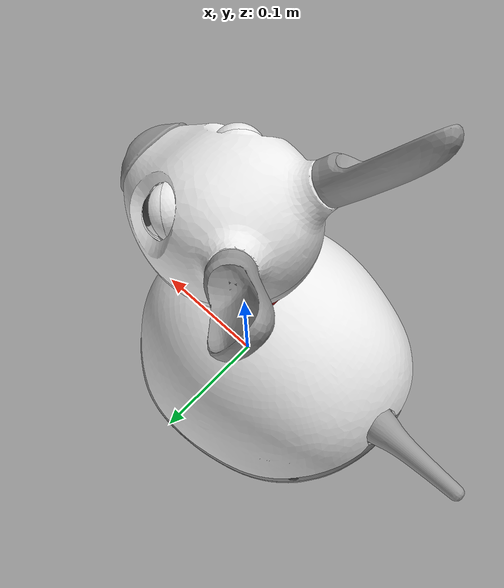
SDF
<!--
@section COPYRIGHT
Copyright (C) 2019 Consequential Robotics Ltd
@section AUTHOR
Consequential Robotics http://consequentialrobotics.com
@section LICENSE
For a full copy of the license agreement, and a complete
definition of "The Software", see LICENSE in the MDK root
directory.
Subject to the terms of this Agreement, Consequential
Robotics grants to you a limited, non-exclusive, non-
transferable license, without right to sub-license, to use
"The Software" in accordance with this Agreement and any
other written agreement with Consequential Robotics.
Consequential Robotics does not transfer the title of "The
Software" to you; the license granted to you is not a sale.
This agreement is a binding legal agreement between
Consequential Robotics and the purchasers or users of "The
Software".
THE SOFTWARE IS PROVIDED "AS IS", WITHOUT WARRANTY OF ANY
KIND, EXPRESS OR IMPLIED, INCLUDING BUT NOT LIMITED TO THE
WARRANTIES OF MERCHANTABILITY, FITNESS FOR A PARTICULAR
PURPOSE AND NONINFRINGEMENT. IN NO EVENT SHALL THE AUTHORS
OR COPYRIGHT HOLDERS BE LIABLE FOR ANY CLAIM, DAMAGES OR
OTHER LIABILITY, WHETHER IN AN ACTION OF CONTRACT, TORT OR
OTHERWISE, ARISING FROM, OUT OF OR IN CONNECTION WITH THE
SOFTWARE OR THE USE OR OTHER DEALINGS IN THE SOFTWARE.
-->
<?xml version="1.0"?>

<sdf version="1.5">
	<model name="miro">

		<include>
			<uri>model://miro_model/components/miro_body</uri>
			<pose>0 0 0 0 0 0</pose>
		</include>

		<include>
			<uri>model://miro_model/components/miro_tail</uri>
			<pose>0 0 0 0 0 0</pose>
		</include>

		<joint type="revolute" name="body_neck">
			<pose>-0.002 0 0.081 0 0 0</pose>
			<parent>miro_body::body</parent>
			<child>miro_neck::neck</child>
			<axis>
				<xyz>0 1 0</xyz>
				<limit>
					<lower>0</lower>
					<upper>1.57</upper>
				</limit>
				<dynamics>
					<spring_stiffness>0.4</spring_stiffness>
					<spring_reference>0.0</spring_reference>
					<friction>0.01</friction>
					<damping>0.1</damping>
				</dynamics>
			</axis>
		</joint>

		<include>
			<uri>model://miro_model/components/miro_neck</uri>
			<pose>0 0 0 0 0 0</pose>
		</include>

		<joint type="revolute" name="neck_gmbl">
			<pose>-0.002 0 0.201 0 0 0</pose>
			<parent>miro_neck::neck</parent>
			<child>miro_gmbl::gmbl</child>
			<axis>
				<xyz>0 0 1</xyz>
				<limit>
					<lower>-1.57</lower>
					<upper>1.57</upper>
				</limit>
				<dynamics>
					<friction>0.01</friction>
					<damping>0.1</damping>
				</dynamics>
			</axis>
		</joint>

		<include>
			<uri>model://miro_model/components/miro_gmbl</uri>
			<pose>0 0 0 0 0 0</pose>
		</include>

		<joint type="revolute" name="gmbl_head">
			<pose>-0.002 0 0.201 0 0 0</pose>
			<parent>miro_gmbl::gmbl</parent>
			<child>miro_head::head</child>
			<axis>
				<xyz>0 1 0</xyz>
				<limit>
					<lower>-1.57</lower>
					<upper>1.57</upper>
				</limit>
				<dynamics>
					<spring_stiffness>0.1</spring_stiffness>
					<spring_reference>-0.5</spring_reference>
					<friction>0.01</friction>
					<damping>0.1</damping>
				</dynamics>
			</axis>
		</joint>

		<include>
			<uri>model://miro_model/components/miro_head</uri>
			<pose>0 0 0 0 0 0</pose>
		</include>

		<plugin name="miro_model" filename="libmiro_gazebo.so"/>

	</model>
</sdf>

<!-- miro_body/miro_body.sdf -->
<sdf version="1.5">
	<model name="miro_body">
		<link name="body">
			<inertial>
				<pose>-0.060 0 0.050 0 0 0</pose>
				<mass>1.570796</mass>
				<inertia>
					<ixx>0.00523599</ixx>
					<ixy>0.0</ixy>
					<ixz>0.0</ixz>
					<iyy>0.00523599</iyy>
					<iyz>0.0</iyz>
					<izz>0.00785398</izz>
				</inertia>
			</inertial>
			<visual name="visual_valance">
				<pose>0 0 0 0 0 0</pose>
				<geometry>
					<mesh>
						<uri>model://miro_model/meshes/valance.stl</uri>
					</mesh>
				</geometry>
				<material>
					<script>
						<uri>file://media/materials/scripts/gazebo.material</uri>
						<name>Gazebo/Grey</name>
					</script>
				</material>
			</visual>
			<collision name="collision_valance">
				<pose>0 0 0 0 0 0</pose>
				<geometry>
					<mesh>
						<uri>model://miro_model/meshes/valance_collision.stl</uri>
					</mesh>
				</geometry>
				<surface>
					<friction>
						<ode>
							<mu>0.1</mu>
							<mu2>0.1</mu2>
						</ode>
					</friction>
				</surface>
			</collision>
			<visual name="visual_skirt_lh">
				<pose>0 0 0 0 0 0</pose>
				<geometry>
					<mesh>
						<uri>model://miro_model/meshes/skirt_lh.stl</uri>
					</mesh>
				</geometry>
				<material>
					<script>
						<uri>file://media/materials/scripts/gazebo.material</uri>
						<name>Gazebo/Grey</name>
					</script>
				</material>
			</visual>
			<visual name="visual_skirt_rh">
				<pose>0 0 0 0 0 0</pose>
				<geometry>
					<mesh>
						<uri>model://miro_model/meshes/skirt_rh.stl</uri>
					</mesh>
				</geometry>
				<material>
					<script>
						<uri>file://media/materials/scripts/gazebo.material</uri>
						<name>Gazebo/Grey</name>
					</script>
				</material>
			</visual>
			<visual name="visual_cliff_sensor_L_asm">
				<pose>0 0 0 0 0 0</pose>
				<geometry>
					<mesh>
						<uri>model://miro_model/meshes/cliff_sensor_L_asm.stl</uri>
					</mesh>
				</geometry>
				<material>
					<script>
						<uri>file://media/materials/scripts/gazebo.material</uri>
						<name>Gazebo/DarkGrey</name>
					</script>
				</material>
			</visual>
			<visual name="visual_cliff_sensor_R_asm">
				<pose>0 0 0 0 0 0</pose>
				<geometry>
					<mesh>
						<uri>model://miro_model/meshes/cliff_sensor_R_asm.stl</uri>
					</mesh>
				</geometry>
				<material>
					<script>
						<uri>file://media/materials/scripts/gazebo.material</uri>
						<name>Gazebo/DarkGrey</name>
					</script>
				</material>
			</visual>
			<visual name="visual_light_sensor_holder_asm_L">
				<pose>0 0 0 0 0 0</pose>
				<geometry>
					<mesh>
						<uri>model://miro_model/meshes/light_sensor_holder_asm_L.stl</uri>
					</mesh>
				</geometry>
				<material>
					<script>
						<uri>file://media/materials/scripts/gazebo.material</uri>
						<name>Gazebo/DarkGrey</name>
					</script>
				</material>
			</visual>
			<visual name="visual_light_sensor_holder_asm_R">
				<pose>0 0 0 0 0 0</pose>
				<geometry>
					<mesh>
						<uri>model://miro_model/meshes/light_sensor_holder_asm_R.stl</uri>
					</mesh>
				</geometry>
				<material>
					<script>
						<uri>file://media/materials/scripts/gazebo.material</uri>
						<name>Gazebo/DarkGrey</name>
					</script>
				</material>
			</visual>
			<visual name="visual_body_shell">
				<pose>0 0 0 0 0 0</pose>
				<geometry>
					<mesh>
						<uri>model://miro_model/meshes/body_shell.stl</uri>
					</mesh>
				</geometry>
				<material>
					<script>
						<uri>file://media/materials/scripts/gazebo.material</uri>
						<name>Gazebo/White</name>
					</script>
				</material>
			</visual>
			<collision name="collision_body_shell">
				<pose>0 0 0 0 0 0</pose>
				<geometry>
					<mesh>
						<uri>model://miro_model/meshes/body_shell_collision.stl</uri>
					</mesh>
				</geometry>
				<surface>
					<friction>
						<ode>
							<mu>0.1</mu>
							<mu2>0.1</mu2>
						</ode>
					</friction>
				</surface>
			</collision>
			<visual name="visual_slider">
				<pose>0 0 0 0 0 0</pose>
				<geometry>
					<mesh>
						<uri>model://miro_model/meshes/slider.stl</uri>
					</mesh>
				</geometry>
				<material>
					<script>
						<uri>file://media/materials/scripts/gazebo.material</uri>
						<name>Gazebo/DarkGrey</name>
					</script>
				</material>
			</visual>
			<collision name="collision_slider">
				<pose>0 0 0 0 0 0</pose>
				<geometry>
					<mesh>
						<uri>model://miro_model/meshes/slider_collision.stl</uri>
					</mesh>
				</geometry>
				<surface>
					<friction>
						<ode>
							<mu>0.01</mu>
							<mu2>0.01</mu2>
						</ode>
					</friction>
				</surface>
			</collision>
			<visual name="visual_battery_box">
				<pose>0 0 0 0 0 0</pose>
				<geometry>
					<mesh>
						<uri>model://miro_model/meshes/battery_box.stl</uri>
					</mesh>
				</geometry>
				<material>
					<script>
						<uri>file://media/materials/scripts/gazebo.material</uri>
						<name>Gazebo/Grey</name>
					</script>
				</material>
			</visual>
			<visual name="visual_battery_box_cover">
				<pose>0 0 0 0 0 0</pose>
				<geometry>
					<mesh>
						<uri>model://miro_model/meshes/battery_box_cover.stl</uri>
					</mesh>
				</geometry>
				<material>
					<script>
						<uri>file://media/materials/scripts/gazebo.material</uri>
						<name>Gazebo/Grey</name>
					</script>
				</material>
			</visual>
			<!-- imu -->
			<sensor name="acc_body" type="imu">
				<pose>0 0 0 0 0 0</pose>
				<always_on>1</always_on>
				<update_rate>50</update_rate>
				<visualize>false</visualize>
			</sensor>
			<!-- cliff -->
			<sensor name="cliff_l" type="sonar">
				<pose>0.062 0.055 0.085 0 -0.52 0</pose>
				<always_on>1</always_on>
				<update_rate>50</update_rate>
				<visualize>false</visualize>
				<sonar>
					<min>0.0</min>
					<max>0.5</max>
					<radius>0.025</radius>
				</sonar>
			</sensor>
			<!-- cliff -->
			<sensor name="cliff_r" type="sonar">
				<pose>0.062 -0.055 0.085 0 -0.52 0</pose>
				<always_on>1</always_on>
				<update_rate>50</update_rate>
				<visualize>false</visualize>
				<sonar>
					<min>0.0</min>
					<max>0.5</max>
					<radius>0.025</radius>
				</sonar>
			</sensor>
			<!-- light -->
			<sensor name="lightfl" type="camera">
				<pose>0.055 0.065 0.08 0 -0.26 0.52</pose>
				<camera>
					<horizontal_fov>1.57</horizontal_fov>
					<image>
						<width>16</width>
						<height>12</height>
					</image>
					<clip>
						<near>0.01</near>
						<far>2</far>
					</clip>
				</camera>
				<always_on>1</always_on>
				<update_rate>5</update_rate>
				<visualize>false</visualize>
			</sensor>
			<!-- light -->
			<sensor name="lightfr" type="camera">
				<pose>0.055 -0.065 0.08 0 -0.26 -0.52</pose>
				<camera>
					<horizontal_fov>1.57</horizontal_fov>
					<image>
						<width>16</width>
						<height>12</height>
					</image>
					<clip>
						<near>0.01</near>
						<far>2</far>
					</clip>
				</camera>
				<always_on>1</always_on>
				<update_rate>5</update_rate>
				<visualize>false</visualize>
			</sensor>
			<!-- light -->
			<sensor name="lightrl" type="camera">
				<pose>-0.125 0.072 0.06 0 -0.26 2.61</pose>
				<camera>
					<horizontal_fov>1.57</horizontal_fov>
					<image>
						<width>16</width>
						<height>12</height>
					</image>
					<clip>
						<near>0.01</near>
						<far>5</far>
					</clip>
				</camera>
				<always_on>1</always_on>
				<update_rate>5</update_rate>
				<visualize>false</visualize>
			</sensor>
			<!-- light -->
			<sensor name="lightrr" type="camera">
				<pose>-0.125 -0.072 0.06 0 -0.26 -2.61</pose>
				<camera>
					<horizontal_fov>1.57</horizontal_fov>
					<image>
						<width>16</width>
						<height>12</height>
					</image>
					<clip>
						<near>0.01</near>
						<far>5</far>
					</clip>
				</camera>
				<always_on>1</always_on>
				<update_rate>5</update_rate>
				<visualize>false</visualize>
			</sensor>
		</link>
		<link name="wheel_lh">
			<inertial>
				<pose>0.000630 0.077790 0.044838 0 0 0</pose>
				<mass>0.134041</mass>
				<inertia>
					<ixx>0.00014298</ixx>
					<ixy>0.0</ixy>
					<ixz>0.0</ixz>
					<iyy>0.00014298</iyy>
					<iyz>0.0</iyz>
					<izz>0.00014298</izz>
				</inertia>
			</inertial>
			<visual name="visual_wheel_tyre_lh">
				<pose>0 0 0 0 0 0</pose>
				<geometry>
					<mesh>
						<uri>model://miro_model/meshes/wheel_tyre_lh.stl</uri>
					</mesh>
				</geometry>
				<material>
					<script>
						<uri>file://media/materials/scripts/gazebo.material</uri>
						<name>Gazebo/DarkGrey</name>
					</script>
				</material>
			</visual>
			<collision name="collision_wheel_tyre_lh">
				<pose>0 0 0 0 0 0</pose>
				<geometry>
					<mesh>
						<uri>model://miro_model/meshes/wheel_tyre_lh_collision.stl</uri>
					</mesh>
				</geometry>
				<surface>
					<friction>
						<ode>
							<mu>1</mu>
							<mu2>1</mu2>
						</ode>
					</friction>
				</surface>
			</collision>
			<visual name="visual_wheel_rim_lh">
				<pose>0 0 0 0 0 0</pose>
				<geometry>
					<mesh>
						<uri>model://miro_model/meshes/wheel_rim_lh.stl</uri>
					</mesh>
				</geometry>
				<material>
					<script>
						<uri>file://media/materials/scripts/gazebo.material</uri>
						<name>Gazebo/Grey</name>
					</script>
				</material>
			</visual>
		</link>
		<link name="wheel_rh">
			<inertial>
				<pose>0.000630 -0.077790 0.044838 0 0 0</pose>
				<mass>0.134041</mass>
				<inertia>
					<ixx>0.00014298</ixx>
					<ixy>0.0</ixy>
					<ixz>0.0</ixz>
					<iyy>0.00014298</iyy>
					<iyz>0.0</iyz>
					<izz>0.00014298</izz>
				</inertia>
			</inertial>
			<visual name="visual_wheel_tyre_rh">
				<pose>0 0 0 0 0 0</pose>
				<geometry>
					<mesh>
						<uri>model://miro_model/meshes/wheel_tyre_rh.stl</uri>
					</mesh>
				</geometry>
				<material>
					<script>
						<uri>file://media/materials/scripts/gazebo.material</uri>
						<name>Gazebo/DarkGrey</name>
					</script>
				</material>
			</visual>
			<collision name="collision_wheel_tyre_rh">
				<pose>0 0 0 0 0 0</pose>
				<geometry>
					<mesh>
						<uri>model://miro_model/meshes/wheel_tyre_rh_collision.stl</uri>
					</mesh>
				</geometry>
				<surface>
					<friction>
						<ode>
							<mu>1</mu>
							<mu2>1</mu2>
						</ode>
					</friction>
				</surface>
			</collision>
			<visual name="visual_wheel_rim_rh">
				<pose>0 0 0 0 0 0</pose>
				<geometry>
					<mesh>
						<uri>model://miro_model/meshes/wheel_rim_rh.stl</uri>
					</mesh>
				</geometry>
				<material>
					<script>
						<uri>file://media/materials/scripts/gazebo.material</uri>
						<name>Gazebo/Grey</name>
					</script>
				</material>
			</visual>
		</link>
		<joint type="revolute" name="body_wheel_lh">
			<pose>0.000630 0.077790 0.044838 0 0 0</pose>
			<parent>body</parent>
			<child>wheel_lh</child>
			<axis>
				<xyz>0 0.999657 0.026185</xyz>
				<dynamics>
					<friction>0.1</friction>
					<damping>0.1</damping>
				</dynamics>
			</axis>
		</joint>
		<joint type="revolute" name="body_wheel_rh">
			<pose>0.000630 -0.077790 0.044838 0 0 0</pose>
			<parent>body</parent>
			<child>wheel_rh</child>
			<axis>
				<xyz>0 0.999657 -0.026185</xyz>
				<dynamics>
					<friction>0.1</friction>
					<damping>0.1</damping>
				</dynamics>
			</axis>
		</joint>
	</model>
</sdf>

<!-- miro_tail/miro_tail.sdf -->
<sdf version="1.5">
	<model name="miro_tail">
		<link name="tail_gmbl">
			<inertial>
				<pose>-0.143 0 0.085 0 0 0</pose>
				<mass>0.056549</mass>
				<inertia>
					<ixx>0.00003393</ixx>
					<ixy>0.0</ixy>
					<ixz>0.0</ixz>
					<iyy>0.00003393</iyy>
					<iyz>0.0</iyz>
					<izz>0.00003393</izz>
				</inertia>
			</inertial>
		</link>
		<joint type="revolute" name="body_tail_gmbl">
			<pose>-0.143 0 0.085 0 0 0</pose>
			<parent>miro_body::body</parent>
			<child>miro_tail::tail_gmbl</child>
			<axis>
				<xyz>0 1 0</xyz>
				<limit>
					<lower>-1.57</lower>
					<upper>1.57</upper>
				</limit>
				<dynamics>
					<friction>0.01</friction>
					<damping>0.02</damping>
				</dynamics>
			</axis>
		</joint>
		<link name="tail">
			<inertial>
				<pose>-0.143 0 0.085 0 0 0</pose>
				<mass>0.056549</mass>
				<inertia>
					<ixx>0.00003393</ixx>
					<ixy>0.0</ixy>
					<ixz>0.0</ixz>
					<iyy>0.00003393</iyy>
					<iyz>0.0</iyz>
					<izz>0.00003393</izz>
				</inertia>
			</inertial>
			<visual name="visual_tail">
				<pose>0 0 0 0 0 0</pose>
				<geometry>
					<mesh>
						<uri>model://miro_model/meshes/tail.stl</uri>
					</mesh>
				</geometry>
				<material>
					<script>
						<uri>file://media/materials/scripts/gazebo.material</uri>
						<name>Gazebo/Grey</name>
					</script>
				</material>
			</visual>
			<collision name="collision_tail">
				<pose>0 0 0 0 0 0</pose>
				<geometry>
					<mesh>
						<uri>model://miro_model/meshes/tail_collision.stl</uri>
					</mesh>
				</geometry>
				<surface>
					<friction>
						<ode>
							<mu>0.1</mu>
							<mu2>0.1</mu2>
						</ode>
					</friction>
				</surface>
			</collision>
		</link>
		<joint type="revolute" name="tail_gmbl_tail">
			<pose>-0.143 0 0.085 0 0 0</pose>
			<parent>miro_tail::tail_gmbl</parent>
			<child>miro_tail::tail</child>
			<axis>
				<xyz>0 0 1</xyz>
				<limit>
					<lower>-1.57</lower>
					<upper>1.57</upper>
				</limit>
				<dynamics>
					<friction>0.01</friction>
					<damping>0.02</damping>
				</dynamics>
			</axis>
		</joint>
	</model>
</sdf>

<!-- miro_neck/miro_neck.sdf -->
<sdf version="1.5">
	<model name="miro_neck">
		<link name="neck">
			<inertial>
				<pose>-0.002 0 0.141 0 0 0</pose>
				<mass>0.075398</mass>
				<inertia>
					<ixx>0.00009802</ixx>
					<ixy>0.0</ixy>
					<ixz>0.0</ixz>
					<iyy>0.00009802</iyy>
					<iyz>0.0</iyz>
					<izz>0.00001508</izz>
				</inertia>
			</inertial>
		</link>
	</model>
</sdf>

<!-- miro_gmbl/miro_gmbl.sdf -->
<sdf version="1.5">
	<model name="miro_gmbl">
		<link name="gmbl">
			<inertial>
				<pose>-0.002 0 0.171 0 0 0</pose>
				<mass>0.039270</mass>
				<inertia>
					<ixx>0.00002487</ixx>
					<ixy>0.0</ixy>
					<ixz>0.0</ixz>
					<iyy>0.00002487</iyy>
					<iyz>0.0</iyz>
					<izz>0.00004909</izz>
				</inertia>
			</inertial>
			<visual name="visual_collar">
				<pose>0 0 0 0 0 0</pose>
				<geometry>
					<mesh>
						<uri>model://miro_model/meshes/collar.stl</uri>
					</mesh>
				</geometry>
				<material>
					<script>
						<uri>file://media/materials/scripts/gazebo.material</uri>
						<name>Gazebo/Red</name>
					</script>
				</material>
			</visual>
		</link>
	</model>
</sdf>

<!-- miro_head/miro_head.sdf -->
<sdf version="1.5">
	<model name="miro_head">
		<link name="head">
			<inertial>
				<pose>-0.002 0 0.221 0 0 0</pose>
				<mass>0.261799</mass>
				<inertia>
					<ixx>0.00043633</ixx>
					<ixy>0.0</ixy>
					<ixz>0.0</ixz>
					<iyy>0.00043633</iyy>
					<iyz>0.0</iyz>
					<izz>0.00043633</izz>
				</inertia>
			</inertial>
			<visual name="visual_head_lower">
				<pose>0 0 0 0 0 0</pose>
				<geometry>
					<mesh>
						<uri>model://miro_model/meshes/head_lower.stl</uri>
					</mesh>
				</geometry>
				<material>
					<script>
						<uri>file://media/materials/scripts/gazebo.material</uri>
						<name>Gazebo/White</name>
					</script>
				</material>
			</visual>
			<collision name="collision_head_lower">
				<pose>0 0 0 0 0 0</pose>
				<geometry>
					<mesh>
						<uri>model://miro_model/meshes/head_lower_collision.stl</uri>
					</mesh>
				</geometry>
				<surface>
					<friction>
						<ode>
							<mu>0.1</mu>
							<mu2>0.1</mu2>
						</ode>
					</friction>
				</surface>
			</collision>
			<visual name="visual_head_upper">
				<pose>0 0 0 0 0 0</pose>
				<geometry>
					<mesh>
						<uri>model://miro_model/meshes/head_upper.stl</uri>
					</mesh>
				</geometry>
				<material>
					<script>
						<uri>file://media/materials/scripts/gazebo.material</uri>
						<name>Gazebo/White</name>
					</script>
				</material>
			</visual>
			<collision name="collision_head_upper">
				<pose>0 0 0 0 0 0</pose>
				<geometry>
					<mesh>
						<uri>model://miro_model/meshes/head_upper_collision.stl</uri>
					</mesh>
				</geometry>
				<surface>
					<friction>
						<ode>
							<mu>0.1</mu>
							<mu2>0.1</mu2>
						</ode>
					</friction>
				</surface>
			</collision>
			<visual name="visual_eyelid_lower_lh">
				<pose>0 0 0 0 0 0</pose>
				<geometry>
					<mesh>
						<uri>model://miro_model/meshes/eyelid_lower_lh.stl</uri>
					</mesh>
				</geometry>
				<material>
					<script>
						<uri>file://media/materials/scripts/gazebo.material</uri>
						<name>Gazebo/White</name>
					</script>
				</material>
			</visual>
			<visual name="visual_eyelid_lower_rh">
				<pose>0 0 0 0 0 0</pose>
				<geometry>
					<mesh>
						<uri>model://miro_model/meshes/eyelid_lower_rh.stl</uri>
					</mesh>
				</geometry>
				<material>
					<script>
						<uri>file://media/materials/scripts/gazebo.material</uri>
						<name>Gazebo/White</name>
					</script>
				</material>
			</visual>
			<visual name="visual_nose">
				<pose>0 0 0 0 0 0</pose>
				<geometry>
					<mesh>
						<uri>model://miro_model/meshes/nose.stl</uri>
					</mesh>
				</geometry>
				<material>
					<script>
						<uri>file://media/materials/scripts/gazebo.material</uri>
						<name>Gazebo/Grey</name>
					</script>
				</material>
			</visual>
			<collision name="collision_nose">
				<pose>0 0 0 0 0 0</pose>
				<geometry>
					<mesh>
						<uri>model://miro_model/meshes/nose_collision.stl</uri>
					</mesh>
				</geometry>
				<surface>
					<friction>
						<ode>
							<mu>0.3</mu>
							<mu2>0.3</mu2>
						</ode>
					</friction>
				</surface>
			</collision>
			<visual name="visual_eyeball_lh">
				<pose>0 0 0 0 0 0</pose>
				<geometry>
					<mesh>
						<uri>model://miro_model/meshes/eyeball_lh.stl</uri>
					</mesh>
				</geometry>
				<material>
					<script>
						<uri>file://media/materials/scripts/gazebo.material</uri>
						<name>Gazebo/White</name>
					</script>
				</material>
			</visual>
			<visual name="visual_eyeball_rh">
				<pose>0 0 0 0 0 0</pose>
				<geometry>
					<mesh>
						<uri>model://miro_model/meshes/eyeball_rh.stl</uri>
					</mesh>
				</geometry>
				<material>
					<script>
						<uri>file://media/materials/scripts/gazebo.material</uri>
						<name>Gazebo/White</name>
					</script>
				</material>
			</visual>
			<visual name="visual_iris_lh">
				<pose>0 0 0 0 0 0</pose>
				<geometry>
					<mesh>
						<uri>model://miro_model/meshes/iris_lh.stl</uri>
					</mesh>
				</geometry>
				<material>
					<script>
						<uri>file://media/materials/scripts/gazebo.material</uri>
						<name>Gazebo/DarkGrey</name>
					</script>
				</material>
			</visual>
			<visual name="visual_iris_rh">
				<pose>0 0 0 0 0 0</pose>
				<geometry>
					<mesh>
						<uri>model://miro_model/meshes/iris_rh.stl</uri>
					</mesh>
				</geometry>
				<material>
					<script>
						<uri>file://media/materials/scripts/gazebo.material</uri>
						<name>Gazebo/DarkGrey</name>
					</script>
				</material>
			</visual>
			<!-- eye_l -->
			<sensor name="eye_l" type="wideanglecamera">
				<!-- pose position come from miro_software_constants.h -->
				<!-- pose angles come from dev/sim_camera_calib -->
				<pose>0.0377 0.0431 0.2595 -0.4262 -0.6816 0.6244</pose>
				<camera>
					<horizontal_fov>2.0944</horizontal_fov>
					<image>
						<width>1280</width>
						<height>720</height>
					</image>
					<clip>
						<!-- clip at short range to eliminate eyelid from view -->
						<near>0.006</near>
						<far>100</far>
					</clip>
					<lens>
						<type>custom</type>
						<scale_to_hfov>1</scale_to_hfov>
						<custom_function>
							<c1>2.0</c1>
							<c2>1.25</c2>
							<c3>0.0</c3>
							<f>1.0</f>
							<fun>sin</fun>
						</custom_function>
					</lens>
				</camera>
				<always_on>1</always_on>
				<update_rate>10</update_rate>
				<visualize>false</visualize>
			</sensor>
			<!-- eye_r -->
			<sensor name="eye_r" type="wideanglecamera">
				<pose>0.0377 -0.0431 0.2595 0.4261 -0.6816 -0.6244</pose>
				<camera>
					<horizontal_fov>2.0944</horizontal_fov>
					<image>
						<width>1280</width>
						<height>720</height>
					</image>
					<clip>
						<near>0.006</near>
						<far>100</far>
					</clip>
					<lens>
						<type>custom</type>
						<scale_to_hfov>1</scale_to_hfov>
						<custom_function>
							<c1>2.0</c1>
							<c2>1.25</c2>
							<c3>0.0</c3>
							<f>1.0</f>
							<fun>sin</fun>
						</custom_function>
					</lens>
				</camera>
				<always_on>1</always_on>
				<update_rate>10</update_rate>
				<visualize>false</visualize>
			</sensor>
			<!-- eye_l narrow -->
			<sensor name="eye_l_narrow" type="camera">
				<!-- pose position come from miro_software_constants.h -->
				<!-- pose angles come from dev/sim_camera_calib -->
				<pose>0.0377 0.0431 0.2595 -0.4262 -0.6816 0.6244</pose>
				<camera>
					<horizontal_fov>2.0944</horizontal_fov>
					<image>
						<width>1280</width>
						<height>720</height>
					</image>
					<clip>
						<!-- clip at short range to eliminate eyelid from view -->
						<near>0.006</near>
						<far>100</far>
					</clip>
				</camera>
				<always_on>1</always_on>
				<update_rate>10</update_rate>
				<visualize>false</visualize>
			</sensor>
			<!-- eye_r_narrow -->
			<sensor name="eye_r_narrow" type="camera">
				<pose>0.0377 -0.0431 0.2595 0.4261 -0.6816 -0.6244</pose>
				<camera>
					<horizontal_fov>2.0944</horizontal_fov>
					<image>
						<width>1280</width>
						<height>720</height>
					</image>
					<clip>
						<near>0.006</near>
						<far>100</far>
					</clip>
				</camera>
				<always_on>1</always_on>
				<update_rate>10</update_rate>
				<visualize>false</visualize>
			</sensor>
			<!-- gaze -->
			<sensor name="gaze" type="camera">
				<pose>0.0577 0 0.2795 0 -0.785398 0</pose>
				<camera>
					<horizontal_fov>1.0</horizontal_fov>
					<image>
						<width>1280</width>
						<height>720</height>
					</image>
					<clip>
						<near>0.001</near>
						<far>100</far>
					</clip>
				</camera>
				<always_on>1</always_on>
				<update_rate>10</update_rate>
				<visualize>false</visualize>
			</sensor>
			<!-- overhead -->
			<sensor name="overhead" type="camera">
				<pose>0 0 1.0 0 1.22 0</pose>
				<camera>
					<horizontal_fov>1.0472</horizontal_fov>
					<image>
						<width>1280</width>
						<height>720</height>
					</image>
					<clip>
						<near>0.01</near>
						<far>2</far>
					</clip>
				</camera>
				<always_on>1</always_on>
				<update_rate>10</update_rate>
				<visualize>false</visualize>
			</sensor>
			<!-- imu -->
			<sensor name="acc_head" type="imu">
				<pose>0 0 0 0 0 0</pose>
				<always_on>1</always_on>
				<update_rate>50</update_rate>
				<visualize>false</visualize>
			</sensor>
			<!-- sonar -->
			<sensor name="sonar" type="sonar">
				<pose>0.1 0 0.235 0 -1.5708 0</pose>
				<always_on>1</always_on>
				<update_rate>50</update_rate>
				<visualize>false</visualize>
				<sonar>
					<min>0.0</min>
					<max>1.0</max>
					<radius>0.05</radius>
				</sonar>
			</sensor>
		</link>
		<link name="eyelid_lh">
			<inertial>
				<pose>0.029 0.032 0.252 0 0 0</pose>
				<mass>0.016755</mass>
				<inertia>
					<ixx>0.00000447</ixx>
					<ixy>0.0</ixy>
					<ixz>0.0</ixz>
					<iyy>0.00000447</iyy>
					<iyz>0.0</iyz>
					<izz>0.00000447</izz>
				</inertia>
			</inertial>
			<visual name="visual_eyelid_lh">
				<pose>0 0 0 0 0 0</pose>
				<geometry>
					<mesh>
						<uri>model://miro_model/meshes/eyelid_lh.stl</uri>
					</mesh>
				</geometry>
				<material>
					<script>
						<uri>file://media/materials/scripts/gazebo.material</uri>
						<name>Gazebo/White</name>
					</script>
				</material>
			</visual>
		</link>
		<link name="eyelid_rh">
			<inertial>
				<pose>0.029 -0.032 0.252 0 0 0</pose>
				<mass>0.016755</mass>
				<inertia>
					<ixx>0.00000447</ixx>
					<ixy>0.0</ixy>
					<ixz>0.0</ixz>
					<iyy>0.00000447</iyy>
					<iyz>0.0</iyz>
					<izz>0.00000447</izz>
				</inertia>
			</inertial>
			<visual name="visual_eyelid_rh">
				<pose>0 0 0 0 0 0</pose>
				<geometry>
					<mesh>
						<uri>model://miro_model/meshes/eyelid_rh.stl</uri>
					</mesh>
				</geometry>
				<material>
					<script>
						<uri>file://media/materials/scripts/gazebo.material</uri>
						<name>Gazebo/White</name>
					</script>
				</material>
			</visual>
		</link>
		<!-- joint axes are from "eyelid axes.txt" in FreeCAD source folder -->
		<joint type="revolute" name="head_eyelid_lh">
			<pose>0.029 0.032 0.252 0 0 0</pose>
			<parent>head</parent>
			<child>eyelid_lh</child>
			<axis>
				<xyz>-0.675 0.675 -0.2978</xyz>
				<limit>
					<lower>-1.57</lower>
					<upper>1.57</upper>
				</limit>
				<dynamics>
					<friction>0.1</friction>
					<damping>0.1</damping>
					<spring_reference>-0.5</spring_reference>
					<spring_stiffness>0.02</spring_stiffness>
				</dynamics>
			</axis>
			<physics>
				<ode>
					<cfm_damping>true</cfm_damping>
					<implicit_spring_damper>true</implicit_spring_damper>
				</ode>
			</physics>
		</joint>
		<joint type="revolute" name="head_eyelid_rh">
			<pose>0.029 -0.032 0.252 0 0 0</pose>
			<parent>head</parent>
			<child>eyelid_rh</child>
			<axis>
				<xyz>0.675 0.675 0.2978</xyz>
				<limit>
					<lower>-1.57</lower>
					<upper>1.57</upper>
				</limit>
				<dynamics>
					<friction>0.1</friction>
					<damping>0.1</damping>
					<spring_reference>-0.5</spring_reference>
					<spring_stiffness>0.02</spring_stiffness>
				</dynamics>
			</axis>
			<physics>
				<ode>
					<cfm_damping>true</cfm_damping>
					<implicit_spring_damper>true</implicit_spring_damper>
				</ode>
			</physics>
		</joint>
		<link name="ear_lh">
			<inertial>
				<pose>-0.0437 0.0474 0.2773 0 0 0</pose>
				<mass>0.056549</mass>
				<inertia>
					<ixx>0.00003393</ixx>
					<ixy>0.0</ixy>
					<ixz>0.0</ixz>
					<iyy>0.00003393</iyy>
					<iyz>0.0</iyz>
					<izz>0.00003393</izz>
				</inertia>
			</inertial>
			<visual name="visual_ear_lh">
				<pose>0 0 0 0 0 0</pose>
				<geometry>
					<mesh>
						<uri>model://miro_model/meshes/ear_lh.stl</uri>
					</mesh>
				</geometry>
				<material>
					<script>
						<uri>file://media/materials/scripts/gazebo.material</uri>
						<name>Gazebo/Grey</name>
					</script>
				</material>
			</visual>
			<collision name="collision_ear_lh">
				<pose>0 0 0 0 0 0</pose>
				<geometry>
					<mesh>
						<uri>model://miro_model/meshes/ear_lh_collision.stl</uri>
					</mesh>
				</geometry>
				<surface>
					<friction>
						<ode>
							<mu>0.3</mu>
							<mu2>0.3</mu2>
						</ode>
					</friction>
				</surface>
			</collision>
		</link>
		<link name="ear_rh">
			<inertial>
				<pose>-0.0437 -0.0474 0.2773 0 0 0</pose>
				<mass>0.056549</mass>
				<inertia>
					<ixx>0.00003393</ixx>
					<ixy>0.0</ixy>
					<ixz>0.0</ixz>
					<iyy>0.00003393</iyy>
					<iyz>0.0</iyz>
					<izz>0.00003393</izz>
				</inertia>
			</inertial>
			<visual name="visual_ear_rh">
				<pose>0 0 0 0 0 0</pose>
				<geometry>
					<mesh>
						<uri>model://miro_model/meshes/ear_rh.stl</uri>
					</mesh>
				</geometry>
				<material>
					<script>
						<uri>file://media/materials/scripts/gazebo.material</uri>
						<name>Gazebo/Grey</name>
					</script>
				</material>
			</visual>
			<collision name="collision_ear_rh">
				<pose>0 0 0 0 0 0</pose>
				<geometry>
					<mesh>
						<uri>model://miro_model/meshes/ear_rh_collision.stl</uri>
					</mesh>
				</geometry>
				<surface>
					<friction>
						<ode>
							<mu>0.3</mu>
							<mu2>0.3</mu2>
						</ode>
					</friction>
				</surface>
			</collision>
		</link>
		<joint type="revolute" name="head_ear_lh">
			<pose>-0.0437 0.0474 0.2773 0 0 0</pose>
			<parent>head</parent>
			<child>ear_lh</child>
			<axis>
				<xyz>-0.5730 0.4344 0.6949</xyz>
				<limit>
					<lower>-1.57</lower>
					<upper>1.57</upper>
				</limit>
				<dynamics>
					<friction>0.01</friction>
					<damping>0.001</damping>
				</dynamics>
			</axis>
		</joint>
		<joint type="revolute" name="head_ear_rh">
			<pose>-0.0437 -0.0474 0.2773 0 0 0</pose>
			<parent>head</parent>
			<child>ear_rh</child>
			<axis>
				<xyz>-0.5730 -0.4344 0.6949</xyz>
				<limit>
					<lower>-1.57</lower>
					<upper>1.57</upper>
				</limit>
				<dynamics>
					<friction>0.01</friction>
					<damping>0.001</damping>
				</dynamics>
			</axis>
		</joint>
	</model>
</sdf>
